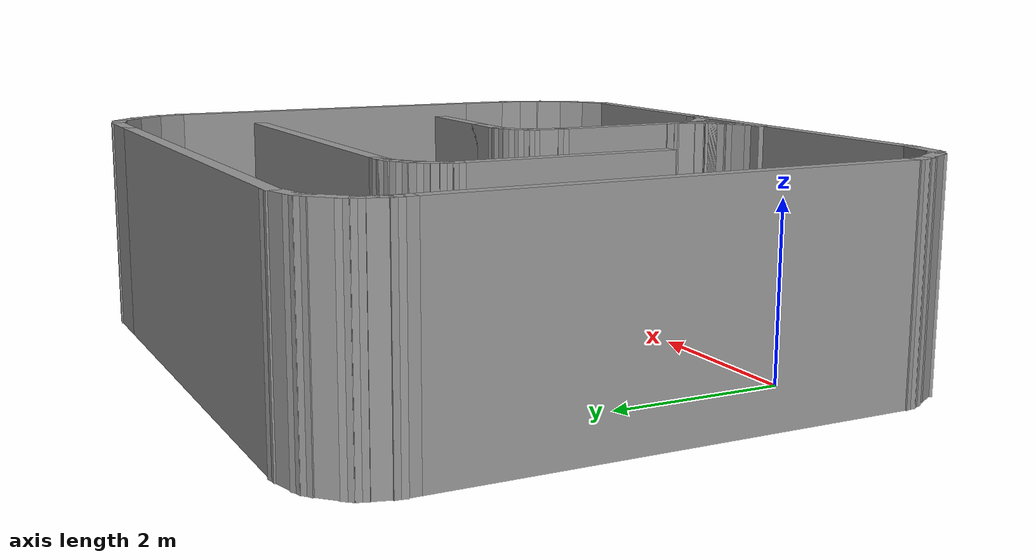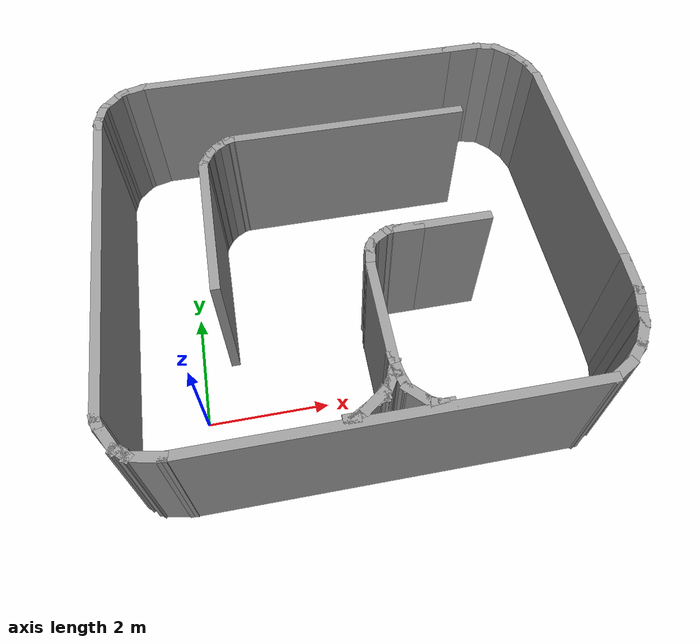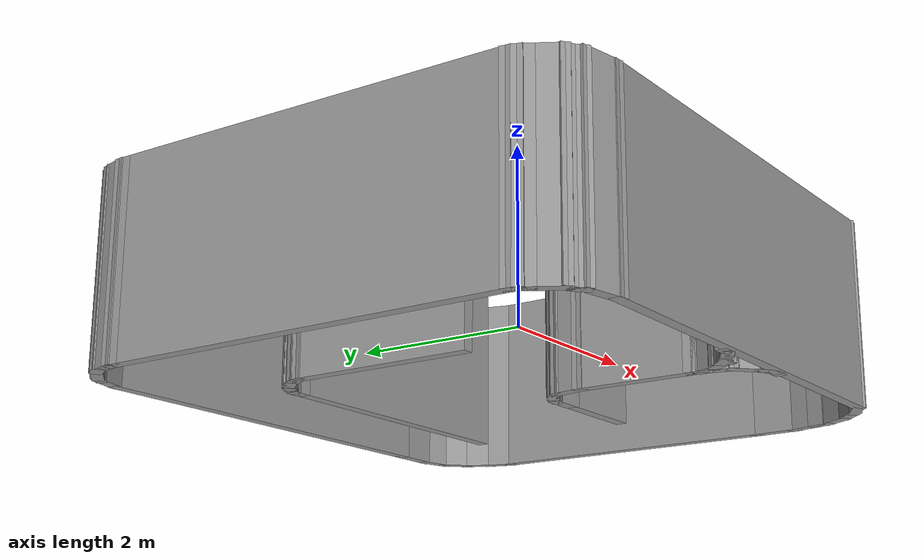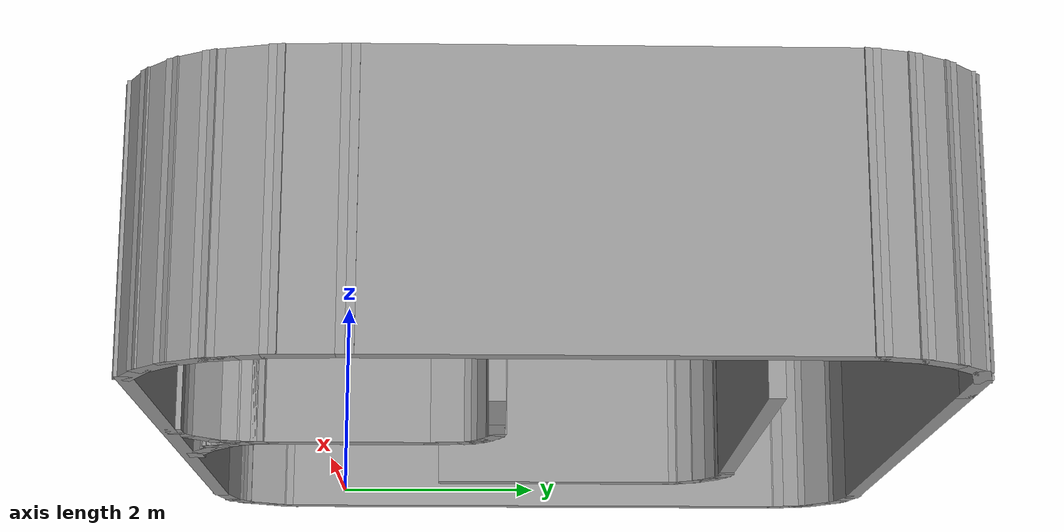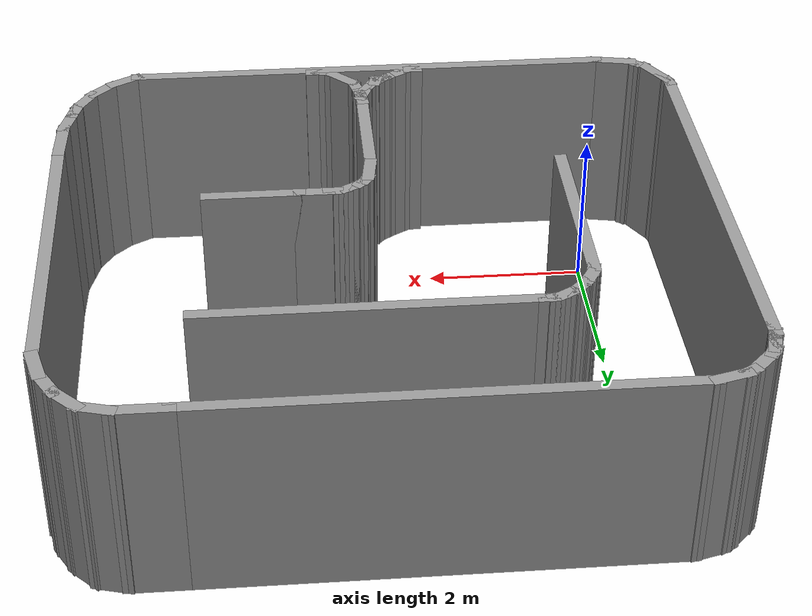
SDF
<?xml version='1.0'?>
<sdf version='1.7'>
  <model name='Untitled'>
    <pose>2.74892 2.07953 0 0 -0 0</pose>
    <link name='Wall_1'>
      <collision name='Wall_1_Collision'>
        <geometry>
          <box>
            <size>6.25 0.15 2.5</size>
          </box>
        </geometry>
        <pose>0 0 1.25 0 -0 0</pose>
      </collision>
      <visual name='Wall_1_Visual'>
        <pose>0 0 1.25 0 -0 0</pose>
        <geometry>
          <box>
            <size>6.25 0.15 2.5</size>
          </box>
        </geometry>
        <material>
          <script>
            <uri>file://media/materials/scripts/gazebo.material</uri>
            <name>Gazebo/Grey</name>
          </script>
          <ambient>1 1 1 1</ambient>
        </material>
        <meta>
          <layer>0</layer>
        </meta>
      </visual>
      <pose>-0.018918 -3.44953 0 0 -0 0</pose>
    </link>
    <link name='Wall_100'>
      <collision name='Wall_100_Collision'>
        <geometry>
          <box>
            <size>0.25 0.15 2.5</size>
          </box>
        </geometry>
        <pose>0 0 1.25 0 -0 0</pose>
      </collision>
      <visual name='Wall_100_Visual'>
        <pose>0 0 1.25 0 -0 0</pose>
        <geometry>
          <box>
            <size>0.25 0.15 2.5</size>
          </box>
        </geometry>
        <material>
          <script>
            <uri>file://media/materials/scripts/gazebo.material</uri>
            <name>Gazebo/Grey</name>
          </script>
          <ambient>1 1 1 1</ambient>
        </material>
        <meta>
          <layer>0</layer>
        </meta>
      </visual>
      <pose>-1.7187 1.88348 0 0 -0 0.261799</pose>
    </link>
    <link name='Wall_101'>
      <collision name='Wall_101_Collision'>
        <geometry>
          <box>
            <size>0.25 0.15 2.5</size>
          </box>
        </geometry>
        <pose>0 0 1.25 0 -0 0</pose>
      </collision>
      <visual name='Wall_101_Visual'>
        <pose>0 0 1.25 0 -0 0</pose>
        <geometry>
          <box>
            <size>0.25 0.15 2.5</size>
          </box>
        </geometry>
        <material>
          <script>
            <uri>file://media/materials/scripts/gazebo.material</uri>
            <name>Gazebo/Grey</name>
          </script>
          <ambient>1 1 1 1</ambient>
        </material>
        <meta>
          <layer>0</layer>
        </meta>
      </visual>
      <pose>-1.6204 1.89642 0 0 -0 0</pose>
    </link>
    <link name='Wall_102'>
      <collision name='Wall_102_Collision'>
        <geometry>
          <box>
            <size>4 0.15 2.5</size>
          </box>
        </geometry>
        <pose>0 0 1.25 0 -0 0</pose>
      </collision>
      <visual name='Wall_102_Visual'>
        <pose>0 0 1.25 0 -0 0</pose>
        <geometry>
          <box>
            <size>4 0.15 2.5</size>
          </box>
        </geometry>
        <material>
          <script>
            <uri>file://media/materials/scripts/gazebo.material</uri>
            <name>Gazebo/Grey</name>
          </script>
          <ambient>1 1 1 1</ambient>
        </material>
        <meta>
          <layer>0</layer>
        </meta>
      </visual>
      <pose>0.354598 1.89642 0 0 -0 0</pose>
    </link>
    <link name='Wall_14'>
      <collision name='Wall_14_Collision'>
        <geometry>
          <box>
            <size>0.5 0.15 2.5</size>
          </box>
        </geometry>
        <pose>0 0 1.25 0 -0 0</pose>
      </collision>
      <visual name='Wall_14_Visual'>
        <pose>0 0 1.25 0 -0 0</pose>
        <geometry>
          <box>
            <size>0.5 0.15 2.5</size>
          </box>
        </geometry>
        <material>
          <script>
            <uri>file://media/materials/scripts/gazebo.material</uri>
            <name>Gazebo/Grey</name>
          </script>
          <ambient>1 1 1 1</ambient>
        </material>
        <meta>
          <layer>0</layer>
        </meta>
      </visual>
      <pose>3.88018 2.64991 0 0 -0 1.8326</pose>
    </link>
    <link name='Wall_15'>
      <collision name='Wall_15_Collision'>
        <geometry>
          <box>
            <size>0.5 0.15 2.5</size>
          </box>
        </geometry>
        <pose>0 0 1.25 0 -0 0</pose>
      </collision>
      <visual name='Wall_15_Visual'>
        <pose>0 0 1.25 0 -0 0</pose>
        <geometry>
          <box>
            <size>0.5 0.15 2.5</size>
          </box>
        </geometry>
        <material>
          <script>
            <uri>file://media/materials/scripts/gazebo.material</uri>
            <name>Gazebo/Grey</name>
          </script>
          <ambient>1 1 1 1</ambient>
        </material>
        <meta>
          <layer>0</layer>
        </meta>
      </visual>
      <pose>3.74739 2.9705 0 0 -0 2.0944</pose>
    </link>
    <link name='Wall_16'>
      <collision name='Wall_16_Collision'>
        <geometry>
          <box>
            <size>0.5 0.15 2.5</size>
          </box>
        </geometry>
        <pose>0 0 1.25 0 -0 0</pose>
      </collision>
      <visual name='Wall_16_Visual'>
        <pose>0 0 1.25 0 -0 0</pose>
        <geometry>
          <box>
            <size>0.5 0.15 2.5</size>
          </box>
        </geometry>
        <material>
          <script>
            <uri>file://media/materials/scripts/gazebo.material</uri>
            <name>Gazebo/Grey</name>
          </script>
          <ambient>1 1 1 1</ambient>
        </material>
        <meta>
          <layer>0</layer>
        </meta>
      </visual>
      <pose>3.53615 3.2458 0 0 -0 2.35619</pose>
    </link>
    <link name='Wall_17'>
      <collision name='Wall_17_Collision'>
        <geometry>
          <box>
            <size>0.5 0.15 2.5</size>
          </box>
        </geometry>
        <pose>0 0 1.25 0 -0 0</pose>
      </collision>
      <visual name='Wall_17_Visual'>
        <pose>0 0 1.25 0 -0 0</pose>
        <geometry>
          <box>
            <size>0.5 0.15 2.5</size>
          </box>
        </geometry>
        <material>
          <script>
            <uri>file://media/materials/scripts/gazebo.material</uri>
            <name>Gazebo/Grey</name>
          </script>
          <ambient>1 1 1 1</ambient>
        </material>
        <meta>
          <layer>0</layer>
        </meta>
      </visual>
      <pose>3.24337 3.41484 0 0 -0 2.87979</pose>
    </link>
    <link name='Wall_18'>
      <collision name='Wall_18_Collision'>
        <geometry>
          <box>
            <size>0.75 0.15 2.5</size>
          </box>
        </geometry>
        <pose>0 0 1.25 0 -0 0</pose>
      </collision>
      <visual name='Wall_18_Visual'>
        <pose>0 0 1.25 0 -0 0</pose>
        <geometry>
          <box>
            <size>0.75 0.15 2.5</size>
          </box>
        </geometry>
        <material>
          <script>
            <uri>file://media/materials/scripts/gazebo.material</uri>
            <name>Gazebo/Grey</name>
          </script>
          <ambient>1 1 1 1</ambient>
        </material>
        <meta>
          <layer>0</layer>
        </meta>
      </visual>
      <pose>2.77433 3.46013 0 0 -0 3.14159</pose>
    </link>
    <link name='Wall_19'>
      <collision name='Wall_19_Collision'>
        <geometry>
          <box>
            <size>5.75 0.15 2.5</size>
          </box>
        </geometry>
        <pose>0 0 1.25 0 -0 0</pose>
      </collision>
      <visual name='Wall_19_Visual'>
        <pose>0 0 1.25 0 -0 0</pose>
        <geometry>
          <box>
            <size>5.75 0.15 2.5</size>
          </box>
        </geometry>
        <material>
          <script>
            <uri>file://media/materials/scripts/gazebo.material</uri>
            <name>Gazebo/Grey</name>
          </script>
          <ambient>1 1 1 1</ambient>
        </material>
        <meta>
          <layer>0</layer>
        </meta>
      </visual>
      <pose>-0.325669 3.46013 0 0 -0 3.14159</pose>
    </link>
    <link name='Wall_2'>
      <collision name='Wall_2_Collision'>
        <geometry>
          <box>
            <size>0.5 0.15 2.5</size>
          </box>
        </geometry>
        <pose>0 0 1.25 0 -0 0</pose>
      </collision>
      <visual name='Wall_2_Visual'>
        <pose>0 0 1.25 0 -0 0</pose>
        <geometry>
          <box>
            <size>0.5 0.15 2.5</size>
          </box>
        </geometry>
        <material>
          <script>
            <uri>file://media/materials/scripts/gazebo.material</uri>
            <name>Gazebo/Grey</name>
          </script>
          <ambient>1 1 1 1</ambient>
        </material>
        <meta>
          <layer>0</layer>
        </meta>
      </visual>
      <pose>3.18264 -3.36203 0 0 -0 0.523599</pose>
    </link>
    <link name='Wall_20'>
      <collision name='Wall_20_Collision'>
        <geometry>
          <box>
            <size>0.5 0.15 2.5</size>
          </box>
        </geometry>
        <pose>0 0 1.25 0 -0 0</pose>
      </collision>
      <visual name='Wall_20_Visual'>
        <pose>0 0 1.25 0 -0 0</pose>
        <geometry>
          <box>
            <size>0.5 0.15 2.5</size>
          </box>
        </geometry>
        <material>
          <script>
            <uri>file://media/materials/scripts/gazebo.material</uri>
            <name>Gazebo/Grey</name>
          </script>
          <ambient>1 1 1 1</ambient>
        </material>
        <meta>
          <layer>0</layer>
        </meta>
      </visual>
      <pose>-3.29471 3.41484 0 0 -0 -2.87979</pose>
    </link>
    <link name='Wall_21'>
      <collision name='Wall_21_Collision'>
        <geometry>
          <box>
            <size>0.25 0.15 2.5</size>
          </box>
        </geometry>
        <pose>0 0 1.25 0 -0 0</pose>
      </collision>
      <visual name='Wall_21_Visual'>
        <pose>0 0 1.25 0 -0 0</pose>
        <geometry>
          <box>
            <size>0.25 0.15 2.5</size>
          </box>
        </geometry>
        <material>
          <script>
            <uri>file://media/materials/scripts/gazebo.material</uri>
            <name>Gazebo/Grey</name>
          </script>
          <ambient>1 1 1 1</ambient>
        </material>
        <meta>
          <layer>0</layer>
        </meta>
      </visual>
      <pose>-3.50705 3.34454 0 0 -0 -2.61799</pose>
    </link>
    <link name='Wall_22'>
      <collision name='Wall_22_Collision'>
        <geometry>
          <box>
            <size>0.5 0.15 2.5</size>
          </box>
        </geometry>
        <pose>0 0 1.25 0 -0 0</pose>
      </collision>
      <visual name='Wall_22_Visual'>
        <pose>0 0 1.25 0 -0 0</pose>
        <geometry>
          <box>
            <size>0.5 0.15 2.5</size>
          </box>
        </geometry>
        <material>
          <script>
            <uri>file://media/materials/scripts/gazebo.material</uri>
            <name>Gazebo/Grey</name>
          </script>
          <ambient>1 1 1 1</ambient>
        </material>
        <meta>
          <layer>0</layer>
        </meta>
      </visual>
      <pose>-3.67409 3.1958 0 0 -0 -2.35619</pose>
    </link>
    <link name='Wall_23'>
      <collision name='Wall_23_Collision'>
        <geometry>
          <box>
            <size>0.25 0.15 2.5</size>
          </box>
        </geometry>
        <pose>0 0 1.25 0 -0 0</pose>
      </collision>
      <visual name='Wall_23_Visual'>
        <pose>0 0 1.25 0 -0 0</pose>
        <geometry>
          <box>
            <size>0.25 0.15 2.5</size>
          </box>
        </geometry>
        <material>
          <script>
            <uri>file://media/materials/scripts/gazebo.material</uri>
            <name>Gazebo/Grey</name>
          </script>
          <ambient>1 1 1 1</ambient>
        </material>
        <meta>
          <layer>0</layer>
        </meta>
      </visual>
      <pose>-3.82283 3.02875 0 0 -0 -2.0944</pose>
    </link>
    <link name='Wall_24'>
      <collision name='Wall_24_Collision'>
        <geometry>
          <box>
            <size>0.25 0.15 2.5</size>
          </box>
        </geometry>
        <pose>0 0 1.25 0 -0 0</pose>
      </collision>
      <visual name='Wall_24_Visual'>
        <pose>0 0 1.25 0 -0 0</pose>
        <geometry>
          <box>
            <size>0.25 0.15 2.5</size>
          </box>
        </geometry>
        <material>
          <script>
            <uri>file://media/materials/scripts/gazebo.material</uri>
            <name>Gazebo/Grey</name>
          </script>
          <ambient>1 1 1 1</ambient>
        </material>
        <meta>
          <layer>0</layer>
        </meta>
      </visual>
      <pose>-3.86077 2.93716 0 0 -0 -1.8326</pose>
    </link>
    <link name='Wall_25'>
      <collision name='Wall_25_Collision'>
        <geometry>
          <box>
            <size>0.25 0.15 2.5</size>
          </box>
        </geometry>
        <pose>0 0 1.25 0 -0 0</pose>
      </collision>
      <visual name='Wall_25_Visual'>
        <pose>0 0 1.25 0 -0 0</pose>
        <geometry>
          <box>
            <size>0.25 0.15 2.5</size>
          </box>
        </geometry>
        <material>
          <script>
            <uri>file://media/materials/scripts/gazebo.material</uri>
            <name>Gazebo/Grey</name>
          </script>
          <ambient>1 1 1 1</ambient>
        </material>
        <meta>
          <layer>0</layer>
        </meta>
      </visual>
      <pose>-3.88666 2.84056 0 0 -0 -1.8326</pose>
    </link>
    <link name='Wall_26'>
      <collision name='Wall_26_Collision'>
        <geometry>
          <box>
            <size>0.25 0.15 2.5</size>
          </box>
        </geometry>
        <pose>0 0 1.25 0 -0 0</pose>
      </collision>
      <visual name='Wall_26_Visual'>
        <pose>0 0 1.25 0 -0 0</pose>
        <geometry>
          <box>
            <size>0.25 0.15 2.5</size>
          </box>
        </geometry>
        <material>
          <script>
            <uri>file://media/materials/scripts/gazebo.material</uri>
            <name>Gazebo/Grey</name>
          </script>
          <ambient>1 1 1 1</ambient>
        </material>
        <meta>
          <layer>0</layer>
        </meta>
      </visual>
      <pose>-3.91254 2.74397 0 0 -0 -1.8326</pose>
    </link>
    <link name='Wall_27'>
      <collision name='Wall_27_Collision'>
        <geometry>
          <box>
            <size>0.25 0.15 2.5</size>
          </box>
        </geometry>
        <pose>0 0 1.25 0 -0 0</pose>
      </collision>
      <visual name='Wall_27_Visual'>
        <pose>0 0 1.25 0 -0 0</pose>
        <geometry>
          <box>
            <size>0.25 0.15 2.5</size>
          </box>
        </geometry>
        <material>
          <script>
            <uri>file://media/materials/scripts/gazebo.material</uri>
            <name>Gazebo/Grey</name>
          </script>
          <ambient>1 1 1 1</ambient>
        </material>
        <meta>
          <layer>0</layer>
        </meta>
      </visual>
      <pose>-3.92548 2.64568 0 0 -0 -1.5708</pose>
    </link>
    <link name='Wall_28'>
      <collision name='Wall_28_Collision'>
        <geometry>
          <box>
            <size>5.5 0.15 2.5</size>
          </box>
        </geometry>
        <pose>0 0 1.25 0 -0 0</pose>
      </collision>
      <visual name='Wall_28_Visual'>
        <pose>0 0 1.25 0 -0 0</pose>
        <geometry>
          <box>
            <size>5.5 0.15 2.5</size>
          </box>
        </geometry>
        <material>
          <script>
            <uri>file://media/materials/scripts/gazebo.material</uri>
            <name>Gazebo/Grey</name>
          </script>
          <ambient>1 1 1 1</ambient>
        </material>
        <meta>
          <layer>0</layer>
        </meta>
      </visual>
      <pose>-3.92548 -0.079325 0 0 -0 -1.5708</pose>
    </link>
    <link name='Wall_29'>
      <collision name='Wall_29_Collision'>
        <geometry>
          <box>
            <size>0.25 0.15 2.5</size>
          </box>
        </geometry>
        <pose>0 0 1.25 0 -0 0</pose>
      </collision>
      <visual name='Wall_29_Visual'>
        <pose>0 0 1.25 0 -0 0</pose>
        <geometry>
          <box>
            <size>0.25 0.15 2.5</size>
          </box>
        </geometry>
        <material>
          <script>
            <uri>file://media/materials/scripts/gazebo.material</uri>
            <name>Gazebo/Grey</name>
          </script>
          <ambient>1 1 1 1</ambient>
        </material>
        <meta>
          <layer>0</layer>
        </meta>
      </visual>
      <pose>-3.91254 -2.80262 0 0 -0 -1.309</pose>
    </link>
    <link name='Wall_3'>
      <collision name='Wall_3_Collision'>
        <geometry>
          <box>
            <size>0.5 0.15 2.5</size>
          </box>
        </geometry>
        <pose>0 0 1.25 0 -0 0</pose>
      </collision>
      <visual name='Wall_3_Visual'>
        <pose>0 0 1.25 0 -0 0</pose>
        <geometry>
          <box>
            <size>0.5 0.15 2.5</size>
          </box>
        </geometry>
        <material>
          <script>
            <uri>file://media/materials/scripts/gazebo.material</uri>
            <name>Gazebo/Grey</name>
          </script>
          <ambient>1 1 1 1</ambient>
        </material>
        <meta>
          <layer>0</layer>
        </meta>
      </visual>
      <pose>3.45793 -3.15079 0 0 -0 0.785398</pose>
    </link>
    <link name='Wall_30'>
      <collision name='Wall_30_Collision'>
        <geometry>
          <box>
            <size>0.25 0.15 2.5</size>
          </box>
        </geometry>
        <pose>0 0 1.25 0 -0 0</pose>
      </collision>
      <visual name='Wall_30_Visual'>
        <pose>0 0 1.25 0 -0 0</pose>
        <geometry>
          <box>
            <size>0.25 0.15 2.5</size>
          </box>
        </geometry>
        <material>
          <script>
            <uri>file://media/materials/scripts/gazebo.material</uri>
            <name>Gazebo/Grey</name>
          </script>
          <ambient>1 1 1 1</ambient>
        </material>
        <meta>
          <layer>0</layer>
        </meta>
      </visual>
      <pose>-3.8746 -2.89422 0 0 -0 -1.0472</pose>
    </link>
    <link name='Wall_31'>
      <collision name='Wall_31_Collision'>
        <geometry>
          <box>
            <size>0.5 0.15 2.5</size>
          </box>
        </geometry>
        <pose>0 0 1.25 0 -0 0</pose>
      </collision>
      <visual name='Wall_31_Visual'>
        <pose>0 0 1.25 0 -0 0</pose>
        <geometry>
          <box>
            <size>0.5 0.15 2.5</size>
          </box>
        </geometry>
        <material>
          <script>
            <uri>file://media/materials/scripts/gazebo.material</uri>
            <name>Gazebo/Grey</name>
          </script>
          <ambient>1 1 1 1</ambient>
        </material>
        <meta>
          <layer>0</layer>
        </meta>
      </visual>
      <pose>-3.7621 -3.08907 0 0 -0 -1.0472</pose>
    </link>
    <link name='Wall_32'>
      <collision name='Wall_32_Collision'>
        <geometry>
          <box>
            <size>0.25 0.15 2.5</size>
          </box>
        </geometry>
        <pose>0 0 1.25 0 -0 0</pose>
      </collision>
      <visual name='Wall_32_Visual'>
        <pose>0 0 1.25 0 -0 0</pose>
        <geometry>
          <box>
            <size>0.25 0.15 2.5</size>
          </box>
        </geometry>
        <material>
          <script>
            <uri>file://media/materials/scripts/gazebo.material</uri>
            <name>Gazebo/Grey</name>
          </script>
          <ambient>1 1 1 1</ambient>
        </material>
        <meta>
          <layer>0</layer>
        </meta>
      </visual>
      <pose>-3.6313 -3.26563 0 0 -0 -0.523599</pose>
    </link>
    <link name='Wall_33'>
      <collision name='Wall_33_Collision'>
        <geometry>
          <box>
            <size>0.25 0.15 2.5</size>
          </box>
        </geometry>
        <pose>0 0 1.25 0 -0 0</pose>
      </collision>
      <visual name='Wall_33_Visual'>
        <pose>0 0 1.25 0 -0 0</pose>
        <geometry>
          <box>
            <size>0.25 0.15 2.5</size>
          </box>
        </geometry>
        <material>
          <script>
            <uri>file://media/materials/scripts/gazebo.material</uri>
            <name>Gazebo/Grey</name>
          </script>
          <ambient>1 1 1 1</ambient>
        </material>
        <meta>
          <layer>0</layer>
        </meta>
      </visual>
      <pose>-3.55264 -3.32598 0 0 -0 -0.785398</pose>
    </link>
    <link name='Wall_34'>
      <collision name='Wall_34_Collision'>
        <geometry>
          <box>
            <size>0.606957 0.15 2.5</size>
          </box>
        </geometry>
        <pose>0 0 1.25 0 -0 0</pose>
      </collision>
      <visual name='Wall_34_Visual'>
        <pose>0 0 1.25 0 -0 0</pose>
        <geometry>
          <box>
            <size>0.606957 0.15 2.5</size>
          </box>
        </geometry>
        <material>
          <script>
            <uri>file://media/materials/scripts/gazebo.material</uri>
            <name>Gazebo/Grey</name>
          </script>
          <ambient>1 1 1 1</ambient>
        </material>
        <meta>
          <layer>0</layer>
        </meta>
      </visual>
      <pose>-3.2931 -3.40544 0 0 -0 -0.19422</pose>
    </link>
    <link name='Wall_37'>
      <collision name='Wall_37_Collision'>
        <geometry>
          <box>
            <size>0.25 0.15 2.5</size>
          </box>
        </geometry>
        <pose>0 0 1.25 0 -0 0</pose>
      </collision>
      <visual name='Wall_37_Visual'>
        <pose>0 0 1.25 0 -0 0</pose>
        <geometry>
          <box>
            <size>0.25 0.15 2.5</size>
          </box>
        </geometry>
        <material>
          <script>
            <uri>file://media/materials/scripts/gazebo.material</uri>
            <name>Gazebo/Grey</name>
          </script>
          <ambient>1 1 1 1</ambient>
        </material>
        <meta>
          <layer>0</layer>
        </meta>
      </visual>
      <pose>0.687325 -3.39845 0 0 -0 3.14159</pose>
    </link>
    <link name='Wall_38'>
      <collision name='Wall_38_Collision'>
        <geometry>
          <box>
            <size>0.25 0.15 2.5</size>
          </box>
        </geometry>
        <pose>0 0 1.25 0 -0 0</pose>
      </collision>
      <visual name='Wall_38_Visual'>
        <pose>0 0 1.25 0 -0 0</pose>
        <geometry>
          <box>
            <size>0.25 0.15 2.5</size>
          </box>
        </geometry>
        <material>
          <script>
            <uri>file://media/materials/scripts/gazebo.material</uri>
            <name>Gazebo/Grey</name>
          </script>
          <ambient>1 1 1 1</ambient>
        </material>
        <meta>
          <layer>0</layer>
        </meta>
      </visual>
      <pose>0.589029 -3.38551 0 0 -0 2.87979</pose>
    </link>
    <link name='Wall_39'>
      <collision name='Wall_39_Collision'>
        <geometry>
          <box>
            <size>0.25 0.15 2.5</size>
          </box>
        </geometry>
        <pose>0 0 1.25 0 -0 0</pose>
      </collision>
      <visual name='Wall_39_Visual'>
        <pose>0 0 1.25 0 -0 0</pose>
        <geometry>
          <box>
            <size>0.25 0.15 2.5</size>
          </box>
        </geometry>
        <material>
          <script>
            <uri>file://media/materials/scripts/gazebo.material</uri>
            <name>Gazebo/Grey</name>
          </script>
          <ambient>1 1 1 1</ambient>
        </material>
        <meta>
          <layer>0</layer>
        </meta>
      </visual>
      <pose>0.497431 -3.34757 0 0 -0 2.61799</pose>
    </link>
    <link name='Wall_4'>
      <collision name='Wall_4_Collision'>
        <geometry>
          <box>
            <size>0.5 0.15 2.5</size>
          </box>
        </geometry>
        <pose>0 0 1.25 0 -0 0</pose>
      </collision>
      <visual name='Wall_4_Visual'>
        <pose>0 0 1.25 0 -0 0</pose>
        <geometry>
          <box>
            <size>0.5 0.15 2.5</size>
          </box>
        </geometry>
        <material>
          <script>
            <uri>file://media/materials/scripts/gazebo.material</uri>
            <name>Gazebo/Grey</name>
          </script>
          <ambient>1 1 1 1</ambient>
        </material>
        <meta>
          <layer>0</layer>
        </meta>
      </visual>
      <pose>3.66918 -2.87549 0 0 -0 1.0472</pose>
    </link>
    <link name='Wall_40'>
      <collision name='Wall_40_Collision'>
        <geometry>
          <box>
            <size>0.5 0.15 2.5</size>
          </box>
        </geometry>
        <pose>0 0 1.25 0 -0 0</pose>
      </collision>
      <visual name='Wall_40_Visual'>
        <pose>0 0 1.25 0 -0 0</pose>
        <geometry>
          <box>
            <size>0.5 0.15 2.5</size>
          </box>
        </geometry>
        <material>
          <script>
            <uri>file://media/materials/scripts/gazebo.material</uri>
            <name>Gazebo/Grey</name>
          </script>
          <ambient>1 1 1 1</ambient>
        </material>
        <meta>
          <layer>0</layer>
        </meta>
      </visual>
      <pose>0.330386 -3.19882 0 0 -0 2.35619</pose>
    </link>
    <link name='Wall_41'>
      <collision name='Wall_41_Collision'>
        <geometry>
          <box>
            <size>0.25 0.15 2.5</size>
          </box>
        </geometry>
        <pose>0 0 1.25 0 -0 0</pose>
      </collision>
      <visual name='Wall_41_Visual'>
        <pose>0 0 1.25 0 -0 0</pose>
        <geometry>
          <box>
            <size>0.25 0.15 2.5</size>
          </box>
        </geometry>
        <material>
          <script>
            <uri>file://media/materials/scripts/gazebo.material</uri>
            <name>Gazebo/Grey</name>
          </script>
          <ambient>1 1 1 1</ambient>
        </material>
        <meta>
          <layer>0</layer>
        </meta>
      </visual>
      <pose>0.193702 -3.02678 0 0 -0 1.8326</pose>
    </link>
    <link name='Wall_42'>
      <collision name='Wall_42_Collision'>
        <geometry>
          <box>
            <size>0.25 0.15 2.5</size>
          </box>
        </geometry>
        <pose>0 0 1.25 0 -0 0</pose>
      </collision>
      <visual name='Wall_42_Visual'>
        <pose>0 0 1.25 0 -0 0</pose>
        <geometry>
          <box>
            <size>0.25 0.15 2.5</size>
          </box>
        </geometry>
        <material>
          <script>
            <uri>file://media/materials/scripts/gazebo.material</uri>
            <name>Gazebo/Grey</name>
          </script>
          <ambient>1 1 1 1</ambient>
        </material>
        <meta>
          <layer>0</layer>
        </meta>
      </visual>
      <pose>0.16782 -2.93019 0 0 -0 1.8326</pose>
    </link>
    <link name='Wall_43'>
      <collision name='Wall_43_Collision'>
        <geometry>
          <box>
            <size>0.256722 0.15 2.5</size>
          </box>
        </geometry>
        <pose>0 0 1.25 0 -0 0</pose>
      </collision>
      <visual name='Wall_43_Visual'>
        <pose>0 0 1.25 0 -0 0</pose>
        <geometry>
          <box>
            <size>0.256722 0.15 2.5</size>
          </box>
        </geometry>
        <material>
          <script>
            <uri>file://media/materials/scripts/gazebo.material</uri>
            <name>Gazebo/Grey</name>
          </script>
          <ambient>1 1 1 1</ambient>
        </material>
        <meta>
          <layer>0</layer>
        </meta>
      </visual>
      <pose>0.14631 -2.82923 0 0 -0 1.73207</pose>
    </link>
    <link name='Wall_44'>
      <collision name='Wall_44_Collision'>
        <geometry>
          <box>
            <size>0.245026 0.15 2.5</size>
          </box>
        </geometry>
        <pose>0 0 1.25 0 -0 0</pose>
      </collision>
      <visual name='Wall_44_Visual'>
        <pose>0 0 1.25 0 -0 0</pose>
        <geometry>
          <box>
            <size>0.245026 0.15 2.5</size>
          </box>
        </geometry>
        <material>
          <script>
            <uri>file://media/materials/scripts/gazebo.material</uri>
            <name>Gazebo/Grey</name>
          </script>
          <ambient>1 1 1 1</ambient>
        </material>
        <meta>
          <layer>0</layer>
        </meta>
      </visual>
      <pose>0.130853 -2.72955 0 0 -0 1.7163</pose>
    </link>
    <link name='Wall_45'>
      <collision name='Wall_45_Collision'>
        <geometry>
          <box>
            <size>1.75 0.15 2.5</size>
          </box>
        </geometry>
        <pose>0 0 1.25 0 -0 0</pose>
      </collision>
      <visual name='Wall_45_Visual'>
        <pose>0 0 1.25 0 -0 0</pose>
        <geometry>
          <box>
            <size>1.75 0.15 2.5</size>
          </box>
        </geometry>
        <material>
          <script>
            <uri>file://media/materials/scripts/gazebo.material</uri>
            <name>Gazebo/Grey</name>
          </script>
          <ambient>1 1 1 1</ambient>
        </material>
        <meta>
          <layer>0</layer>
        </meta>
      </visual>
      <pose>0.121464 -1.87753 0 0 -0 1.5708</pose>
    </link>
    <link name='Wall_47'>
      <collision name='Wall_47_Collision'>
        <geometry>
          <box>
            <size>0.245026 0.15 2.5</size>
          </box>
        </geometry>
        <pose>0 0 1.25 0 -0 0</pose>
      </collision>
      <visual name='Wall_47_Visual'>
        <pose>0 0 1.25 0 -0 0</pose>
        <geometry>
          <box>
            <size>0.245026 0.15 2.5</size>
          </box>
        </geometry>
        <material>
          <script>
            <uri>file://media/materials/scripts/gazebo.material</uri>
            <name>Gazebo/Grey</name>
          </script>
          <ambient>1 1 1 1</ambient>
        </material>
        <meta>
          <layer>0</layer>
        </meta>
      </visual>
      <pose>0.130853 -2.72955 0 0 -0 -1.42529</pose>
    </link>
    <link name='Wall_5'>
      <collision name='Wall_5_Collision'>
        <geometry>
          <box>
            <size>0.25 0.15 2.5</size>
          </box>
        </geometry>
        <pose>0 0 1.25 0 -0 0</pose>
      </collision>
      <visual name='Wall_5_Visual'>
        <pose>0 0 1.25 0 -0 0</pose>
        <geometry>
          <box>
            <size>0.25 0.15 2.5</size>
          </box>
        </geometry>
        <material>
          <script>
            <uri>file://media/materials/scripts/gazebo.material</uri>
            <name>Gazebo/Grey</name>
          </script>
          <ambient>1 1 1 1</ambient>
        </material>
        <meta>
          <layer>0</layer>
        </meta>
      </visual>
      <pose>3.76962 -2.67564 0 0 -0 1.309</pose>
    </link>
    <link name='Wall_59'>
      <collision name='Wall_59_Collision'>
        <geometry>
          <box>
            <size>0.25 0.15 2.5</size>
          </box>
        </geometry>
        <pose>0 0 1.25 0 -0 0</pose>
      </collision>
      <visual name='Wall_59_Visual'>
        <pose>0 0 1.25 0 -0 0</pose>
        <geometry>
          <box>
            <size>0.25 0.15 2.5</size>
          </box>
        </geometry>
        <material>
          <script>
            <uri>file://media/materials/scripts/gazebo.material</uri>
            <name>Gazebo/Grey</name>
          </script>
          <ambient>1 1 1 1</ambient>
        </material>
        <meta>
          <layer>0</layer>
        </meta>
      </visual>
      <pose>-0.600821 -3.38053 0 0 -0 0</pose>
    </link>
    <link name='Wall_6'>
      <collision name='Wall_6_Collision'>
        <geometry>
          <box>
            <size>0.25 0.15 2.5</size>
          </box>
        </geometry>
        <pose>0 0 1.25 0 -0 0</pose>
      </collision>
      <visual name='Wall_6_Visual'>
        <pose>0 0 1.25 0 -0 0</pose>
        <geometry>
          <box>
            <size>0.25 0.15 2.5</size>
          </box>
        </geometry>
        <material>
          <script>
            <uri>file://media/materials/scripts/gazebo.material</uri>
            <name>Gazebo/Grey</name>
          </script>
          <ambient>1 1 1 1</ambient>
        </material>
        <meta>
          <layer>0</layer>
        </meta>
      </visual>
      <pose>3.7955 -2.57905 0 0 -0 1.309</pose>
    </link>
    <link name='Wall_60'>
      <collision name='Wall_60_Collision'>
        <geometry>
          <box>
            <size>0.25 0.15 2.5</size>
          </box>
        </geometry>
        <pose>0 0 1.25 0 -0 0</pose>
      </collision>
      <visual name='Wall_60_Visual'>
        <pose>0 0 1.25 0 -0 0</pose>
        <geometry>
          <box>
            <size>0.25 0.15 2.5</size>
          </box>
        </geometry>
        <material>
          <script>
            <uri>file://media/materials/scripts/gazebo.material</uri>
            <name>Gazebo/Grey</name>
          </script>
          <ambient>1 1 1 1</ambient>
        </material>
        <meta>
          <layer>0</layer>
        </meta>
      </visual>
      <pose>-0.50752 -3.35553 0 0 -0 0.523599</pose>
    </link>
    <link name='Wall_61'>
      <collision name='Wall_61_Collision'>
        <geometry>
          <box>
            <size>0.238844 0.15 2.5</size>
          </box>
        </geometry>
        <pose>0 0 1.25 0 -0 0</pose>
      </collision>
      <visual name='Wall_61_Visual'>
        <pose>0 0 1.25 0 -0 0</pose>
        <geometry>
          <box>
            <size>0.238844 0.15 2.5</size>
          </box>
        </geometry>
        <material>
          <script>
            <uri>file://media/materials/scripts/gazebo.material</uri>
            <name>Gazebo/Grey</name>
          </script>
          <ambient>1 1 1 1</ambient>
        </material>
        <meta>
          <layer>0</layer>
        </meta>
      </visual>
      <pose>-0.425946 -3.30804 0 0 -0 0.531187</pose>
    </link>
    <link name='Wall_62'>
      <collision name='Wall_62_Collision'>
        <geometry>
          <box>
            <size>0.490296 0.15 2.5</size>
          </box>
        </geometry>
        <pose>0 0 1.25 0 -0 0</pose>
      </collision>
      <visual name='Wall_62_Visual'>
        <pose>0 0 1.25 0 -0 0</pose>
        <geometry>
          <box>
            <size>0.490296 0.15 2.5</size>
          </box>
        </geometry>
        <material>
          <script>
            <uri>file://media/materials/scripts/gazebo.material</uri>
            <name>Gazebo/Grey</name>
          </script>
          <ambient>1 1 1 1</ambient>
        </material>
        <meta>
          <layer>0</layer>
        </meta>
      </visual>
      <pose>-0.24596 -3.19429 0 0 -0 0.637933</pose>
    </link>
    <link name='Wall_63'>
      <collision name='Wall_63_Collision'>
        <geometry>
          <box>
            <size>0.289379 0.15 2.5</size>
          </box>
        </geometry>
        <pose>0 0 1.25 0 -0 0</pose>
      </collision>
      <visual name='Wall_63_Visual'>
        <pose>0 0 1.25 0 -0 0</pose>
        <geometry>
          <box>
            <size>0.289379 0.15 2.5</size>
          </box>
        </geometry>
        <material>
          <script>
            <uri>file://media/materials/scripts/gazebo.material</uri>
            <name>Gazebo/Grey</name>
          </script>
          <ambient>1 1 1 1</ambient>
        </material>
        <meta>
          <layer>0</layer>
        </meta>
      </visual>
      <pose>-0.162308 -3.13342 0 0 -0 -2.33068</pose>
    </link>
    <link name='Wall_64'>
      <collision name='Wall_64_Collision'>
        <geometry>
          <box>
            <size>0.289379 0.15 2.5</size>
          </box>
        </geometry>
        <pose>0 0 1.25 0 -0 0</pose>
      </collision>
      <visual name='Wall_64_Visual'>
        <pose>0 0 1.25 0 -0 0</pose>
        <geometry>
          <box>
            <size>0.289379 0.15 2.5</size>
          </box>
        </geometry>
        <material>
          <script>
            <uri>file://media/materials/scripts/gazebo.material</uri>
            <name>Gazebo/Grey</name>
          </script>
          <ambient>1 1 1 1</ambient>
        </material>
        <meta>
          <layer>0</layer>
        </meta>
      </visual>
      <pose>-0.162308 -3.13342 0 0 -0 0.810911</pose>
    </link>
    <link name='Wall_65'>
      <collision name='Wall_65_Collision'>
        <geometry>
          <box>
            <size>0.289379 0.15 2.5</size>
          </box>
        </geometry>
        <pose>0 0 1.25 0 -0 0</pose>
      </collision>
      <visual name='Wall_65_Visual'>
        <pose>0 0 1.25 0 -0 0</pose>
        <geometry>
          <box>
            <size>0.289379 0.15 2.5</size>
          </box>
        </geometry>
        <material>
          <script>
            <uri>file://media/materials/scripts/gazebo.material</uri>
            <name>Gazebo/Grey</name>
          </script>
          <ambient>1 1 1 1</ambient>
        </material>
        <meta>
          <layer>0</layer>
        </meta>
      </visual>
      <pose>-0.162308 -3.13342 0 0 -0 -2.33068</pose>
    </link>
    <link name='Wall_66'>
      <collision name='Wall_66_Collision'>
        <geometry>
          <box>
            <size>0.261124 0.15 2.5</size>
          </box>
        </geometry>
        <pose>0 0 1.25 0 -0 0</pose>
      </collision>
      <visual name='Wall_66_Visual'>
        <pose>0 0 1.25 0 -0 0</pose>
        <geometry>
          <box>
            <size>0.261124 0.15 2.5</size>
          </box>
        </geometry>
        <material>
          <script>
            <uri>file://media/materials/scripts/gazebo.material</uri>
            <name>Gazebo/Grey</name>
          </script>
          <ambient>1 1 1 1</ambient>
        </material>
        <meta>
          <layer>0</layer>
        </meta>
      </visual>
      <pose>-0.157047 -3.16813 0 0 -0 0.288472</pose>
    </link>
    <link name='Wall_67'>
      <collision name='Wall_67_Collision'>
        <geometry>
          <box>
            <size>0.25 0.15 2.5</size>
          </box>
        </geometry>
        <pose>0 0 1.25 0 -0 0</pose>
      </collision>
      <visual name='Wall_67_Visual'>
        <pose>0 0 1.25 0 -0 0</pose>
        <geometry>
          <box>
            <size>0.25 0.15 2.5</size>
          </box>
        </geometry>
        <material>
          <script>
            <uri>file://media/materials/scripts/gazebo.material</uri>
            <name>Gazebo/Grey</name>
          </script>
          <ambient>1 1 1 1</ambient>
        </material>
        <meta>
          <layer>0</layer>
        </meta>
      </visual>
      <pose>-0.085811 -3.10403 0 0 -0 1.309</pose>
    </link>
    <link name='Wall_7'>
      <collision name='Wall_7_Collision'>
        <geometry>
          <box>
            <size>0.5 0.15 2.5</size>
          </box>
        </geometry>
        <pose>0 0 1.25 0 -0 0</pose>
      </collision>
      <visual name='Wall_7_Visual'>
        <pose>0 0 1.25 0 -0 0</pose>
        <geometry>
          <box>
            <size>0.5 0.15 2.5</size>
          </box>
        </geometry>
        <material>
          <script>
            <uri>file://media/materials/scripts/gazebo.material</uri>
            <name>Gazebo/Grey</name>
          </script>
          <ambient>1 1 1 1</ambient>
        </material>
        <meta>
          <layer>0</layer>
        </meta>
      </visual>
      <pose>3.85374 -2.36171 0 0 -0 1.309</pose>
    </link>
    <link name='Wall_70'>
      <collision name='Wall_70_Collision'>
        <geometry>
          <box>
            <size>0.401391 0.15 2.5</size>
          </box>
        </geometry>
        <pose>0 0 1.25 0 -0 0</pose>
      </collision>
      <visual name='Wall_70_Visual'>
        <pose>0 0 1.25 0 -0 0</pose>
        <geometry>
          <box>
            <size>0.401391 0.15 2.5</size>
          </box>
        </geometry>
        <material>
          <script>
            <uri>file://media/materials/scripts/gazebo.material</uri>
            <name>Gazebo/Grey</name>
          </script>
          <ambient>1 1 1 1</ambient>
        </material>
        <meta>
          <layer>0</layer>
        </meta>
      </visual>
      <pose>-0.040556 -3.04369 0 0 -0 1.04373</pose>
    </link>
    <link name='Wall_71'>
      <collision name='Wall_71_Collision'>
        <geometry>
          <box>
            <size>0.260067 0.15 2.5</size>
          </box>
        </geometry>
        <pose>0 0 1.25 0 -0 0</pose>
      </collision>
      <visual name='Wall_71_Visual'>
        <pose>0 0 1.25 0 -0 0</pose>
        <geometry>
          <box>
            <size>0.260067 0.15 2.5</size>
          </box>
        </geometry>
        <material>
          <script>
            <uri>file://media/materials/scripts/gazebo.material</uri>
            <name>Gazebo/Grey</name>
          </script>
          <ambient>1 1 1 1</ambient>
        </material>
        <meta>
          <layer>0</layer>
        </meta>
      </visual>
      <pose>0.048181 -2.8943 0 0 -0 0.982508</pose>
    </link>
    <link name='Wall_72'>
      <collision name='Wall_72_Collision'>
        <geometry>
          <box>
            <size>0.324934 0.15 2.5</size>
          </box>
        </geometry>
        <pose>0 0 1.25 0 -0 0</pose>
      </collision>
      <visual name='Wall_72_Visual'>
        <pose>0 0 1.25 0 -0 0</pose>
        <geometry>
          <box>
            <size>0.324934 0.15 2.5</size>
          </box>
        </geometry>
        <material>
          <script>
            <uri>file://media/materials/scripts/gazebo.material</uri>
            <name>Gazebo/Grey</name>
          </script>
          <ambient>1 1 1 1</ambient>
        </material>
        <meta>
          <layer>0</layer>
        </meta>
      </visual>
      <pose>0.096691 -2.76753 0 0 -0 1.18326</pose>
    </link>
    <link name='Wall_73'>
      <collision name='Wall_73_Collision'>
        <geometry>
          <box>
            <size>0.256106 0.15 2.5</size>
          </box>
        </geometry>
        <pose>0 0 1.25 0 -0 0</pose>
      </collision>
      <visual name='Wall_73_Visual'>
        <pose>0 0 1.25 0 -0 0</pose>
        <geometry>
          <box>
            <size>0.256106 0.15 2.5</size>
          </box>
        </geometry>
        <material>
          <script>
            <uri>file://media/materials/scripts/gazebo.material</uri>
            <name>Gazebo/Grey</name>
          </script>
          <ambient>1 1 1 1</ambient>
        </material>
        <meta>
          <layer>0</layer>
        </meta>
      </visual>
      <pose>0.119688 -2.63404 0 0 -0 1.66626</pose>
    </link>
    <link name='Wall_75'>
      <collision name='Wall_75_Collision'>
        <geometry>
          <box>
            <size>0.490296 0.15 2.5</size>
          </box>
        </geometry>
        <pose>0 0 1.25 0 -0 0</pose>
      </collision>
      <visual name='Wall_75_Visual'>
        <pose>0 0 1.25 0 -0 0</pose>
        <geometry>
          <box>
            <size>0.490296 0.15 2.5</size>
          </box>
        </geometry>
        <material>
          <script>
            <uri>file://media/materials/scripts/gazebo.material</uri>
            <name>Gazebo/Grey</name>
          </script>
          <ambient>1 1 1 1</ambient>
        </material>
        <meta>
          <layer>0</layer>
        </meta>
      </visual>
      <pose>0.146464 -0.909234 0 0 -0 1.42333</pose>
    </link>
    <link name='Wall_76'>
      <collision name='Wall_76_Collision'>
        <geometry>
          <box>
            <size>0.25 0.15 2.5</size>
          </box>
        </geometry>
        <pose>0 0 1.25 0 -0 0</pose>
      </collision>
      <visual name='Wall_76_Visual'>
        <pose>0 0 1.25 0 -0 0</pose>
        <geometry>
          <box>
            <size>0.25 0.15 2.5</size>
          </box>
        </geometry>
        <material>
          <script>
            <uri>file://media/materials/scripts/gazebo.material</uri>
            <name>Gazebo/Grey</name>
          </script>
          <ambient>1 1 1 1</ambient>
        </material>
        <meta>
          <layer>0</layer>
        </meta>
      </visual>
      <pose>0.196464 -0.697631 0 0 -0 1.0472</pose>
    </link>
    <link name='Wall_77'>
      <collision name='Wall_77_Collision'>
        <geometry>
          <box>
            <size>0.25 0.15 2.5</size>
          </box>
        </geometry>
        <pose>0 0 1.25 0 -0 0</pose>
      </collision>
      <visual name='Wall_77_Visual'>
        <pose>0 0 1.25 0 -0 0</pose>
        <geometry>
          <box>
            <size>0.25 0.15 2.5</size>
          </box>
        </geometry>
        <material>
          <script>
            <uri>file://media/materials/scripts/gazebo.material</uri>
            <name>Gazebo/Grey</name>
          </script>
          <ambient>1 1 1 1</ambient>
        </material>
        <meta>
          <layer>0</layer>
        </meta>
      </visual>
      <pose>0.256819 -0.618975 0 0 -0 0.785398</pose>
    </link>
    <link name='Wall_78'>
      <collision name='Wall_78_Collision'>
        <geometry>
          <box>
            <size>0.25 0.15 2.5</size>
          </box>
        </geometry>
        <pose>0 0 1.25 0 -0 0</pose>
      </collision>
      <visual name='Wall_78_Visual'>
        <pose>0 0 1.25 0 -0 0</pose>
        <geometry>
          <box>
            <size>0.25 0.15 2.5</size>
          </box>
        </geometry>
        <material>
          <script>
            <uri>file://media/materials/scripts/gazebo.material</uri>
            <name>Gazebo/Grey</name>
          </script>
          <ambient>1 1 1 1</ambient>
        </material>
        <meta>
          <layer>0</layer>
        </meta>
      </visual>
      <pose>0.335476 -0.558619 0 0 -0 0.523599</pose>
    </link>
    <link name='Wall_79'>
      <collision name='Wall_79_Collision'>
        <geometry>
          <box>
            <size>0.25 0.15 2.5</size>
          </box>
        </geometry>
        <pose>0 0 1.25 0 -0 0</pose>
      </collision>
      <visual name='Wall_79_Visual'>
        <pose>0 0 1.25 0 -0 0</pose>
        <geometry>
          <box>
            <size>0.25 0.15 2.5</size>
          </box>
        </geometry>
        <material>
          <script>
            <uri>file://media/materials/scripts/gazebo.material</uri>
            <name>Gazebo/Grey</name>
          </script>
          <ambient>1 1 1 1</ambient>
        </material>
        <meta>
          <layer>0</layer>
        </meta>
      </visual>
      <pose>0.422078 -0.508619 0 0 -0 0.523599</pose>
    </link>
    <link name='Wall_8'>
      <collision name='Wall_8_Collision'>
        <geometry>
          <box>
            <size>0.72416 0.15 2.5</size>
          </box>
        </geometry>
        <pose>0 0 1.25 0 -0 0</pose>
      </collision>
      <visual name='Wall_8_Visual'>
        <pose>0 0 1.25 0 -0 0</pose>
        <geometry>
          <box>
            <size>0.72416 0.15 2.5</size>
          </box>
        </geometry>
        <material>
          <script>
            <uri>file://media/materials/scripts/gazebo.material</uri>
            <name>Gazebo/Grey</name>
          </script>
          <ambient>1 1 1 1</ambient>
        </material>
        <meta>
          <layer>0</layer>
        </meta>
      </visual>
      <pose>3.91225 -1.9059 0 0 -0 1.52471</pose>
    </link>
    <link name='Wall_80'>
      <collision name='Wall_80_Collision'>
        <geometry>
          <box>
            <size>0.25 0.15 2.5</size>
          </box>
        </geometry>
        <pose>0 0 1.25 0 -0 0</pose>
      </collision>
      <visual name='Wall_80_Visual'>
        <pose>0 0 1.25 0 -0 0</pose>
        <geometry>
          <box>
            <size>0.25 0.15 2.5</size>
          </box>
        </geometry>
        <material>
          <script>
            <uri>file://media/materials/scripts/gazebo.material</uri>
            <name>Gazebo/Grey</name>
          </script>
          <ambient>1 1 1 1</ambient>
        </material>
        <meta>
          <layer>0</layer>
        </meta>
      </visual>
      <pose>0.513676 -0.470678 0 0 -0 0.261799</pose>
    </link>
    <link name='Wall_81'>
      <collision name='Wall_81_Collision'>
        <geometry>
          <box>
            <size>0.25 0.15 2.5</size>
          </box>
        </geometry>
        <pose>0 0 1.25 0 -0 0</pose>
      </collision>
      <visual name='Wall_81_Visual'>
        <pose>0 0 1.25 0 -0 0</pose>
        <geometry>
          <box>
            <size>0.25 0.15 2.5</size>
          </box>
        </geometry>
        <material>
          <script>
            <uri>file://media/materials/scripts/gazebo.material</uri>
            <name>Gazebo/Grey</name>
          </script>
          <ambient>1 1 1 1</ambient>
        </material>
        <meta>
          <layer>0</layer>
        </meta>
      </visual>
      <pose>0.611972 -0.457737 0 0 -0 0</pose>
    </link>
    <link name='Wall_82'>
      <collision name='Wall_82_Collision'>
        <geometry>
          <box>
            <size>0.5 0.15 2.5</size>
          </box>
        </geometry>
        <pose>0 0 1.25 0 -0 0</pose>
      </collision>
      <visual name='Wall_82_Visual'>
        <pose>0 0 1.25 0 -0 0</pose>
        <geometry>
          <box>
            <size>0.5 0.15 2.5</size>
          </box>
        </geometry>
        <material>
          <script>
            <uri>file://media/materials/scripts/gazebo.material</uri>
            <name>Gazebo/Grey</name>
          </script>
          <ambient>1 1 1 1</ambient>
        </material>
        <meta>
          <layer>0</layer>
        </meta>
      </visual>
      <pose>0.836972 -0.457737 0 0 -0 0</pose>
    </link>
    <link name='Wall_83'>
      <collision name='Wall_83_Collision'>
        <geometry>
          <box>
            <size>1.25 0.15 2.5</size>
          </box>
        </geometry>
        <pose>0 0 1.25 0 -0 0</pose>
      </collision>
      <visual name='Wall_83_Visual'>
        <pose>0 0 1.25 0 -0 0</pose>
        <geometry>
          <box>
            <size>1.25 0.15 2.5</size>
          </box>
        </geometry>
        <material>
          <script>
            <uri>file://media/materials/scripts/gazebo.material</uri>
            <name>Gazebo/Grey</name>
          </script>
          <ambient>1 1 1 1</ambient>
        </material>
        <meta>
          <layer>0</layer>
        </meta>
      </visual>
      <pose>1.56197 -0.457737 0 0 -0 0</pose>
    </link>
    <link name='Wall_85'>
      <collision name='Wall_85_Collision'>
        <geometry>
          <box>
            <size>2.5 0.15 2.5</size>
          </box>
        </geometry>
        <pose>0 0 1.25 0 -0 0</pose>
      </collision>
      <visual name='Wall_85_Visual'>
        <pose>0 0 1.25 0 -0 0</pose>
        <geometry>
          <box>
            <size>2.5 0.15 2.5</size>
          </box>
        </geometry>
        <material>
          <script>
            <uri>file://media/materials/scripts/gazebo.material</uri>
            <name>Gazebo/Grey</name>
          </script>
          <ambient>1 1 1 1</ambient>
        </material>
        <meta>
          <layer>0</layer>
        </meta>
      </visual>
      <pose>-2.2075 0.184319 0 0 -0 1.5708</pose>
    </link>
    <link name='Wall_9'>
      <collision name='Wall_9_Collision'>
        <geometry>
          <box>
            <size>4.25 0.15 2.5</size>
          </box>
        </geometry>
        <pose>0 0 1.25 0 -0 0</pose>
      </collision>
      <visual name='Wall_9_Visual'>
        <pose>0 0 1.25 0 -0 0</pose>
        <geometry>
          <box>
            <size>4.25 0.15 2.5</size>
          </box>
        </geometry>
        <material>
          <script>
            <uri>file://media/materials/scripts/gazebo.material</uri>
            <name>Gazebo/Grey</name>
          </script>
          <ambient>1 1 1 1</ambient>
        </material>
        <meta>
          <layer>0</layer>
        </meta>
      </visual>
      <pose>3.92548 0.430872 0 0 -0 1.5708</pose>
    </link>
    <link name='Wall_93'>
      <collision name='Wall_93_Collision'>
        <geometry>
          <box>
            <size>0.25 0.15 2.5</size>
          </box>
        </geometry>
        <pose>0 0 1.25 0 -0 0</pose>
      </collision>
      <visual name='Wall_93_Visual'>
        <pose>0 0 1.25 0 -0 0</pose>
        <geometry>
          <box>
            <size>0.25 0.15 2.5</size>
          </box>
        </geometry>
        <material>
          <script>
            <uri>file://media/materials/scripts/gazebo.material</uri>
            <name>Gazebo/Grey</name>
          </script>
          <ambient>1 1 1 1</ambient>
        </material>
        <meta>
          <layer>0</layer>
        </meta>
      </visual>
      <pose>-2.19456 1.40762 0 0 -0 1.309</pose>
    </link>
    <link name='Wall_94'>
      <collision name='Wall_94_Collision'>
        <geometry>
          <box>
            <size>0.25 0.15 2.5</size>
          </box>
        </geometry>
        <pose>0 0 1.25 0 -0 0</pose>
      </collision>
      <visual name='Wall_94_Visual'>
        <pose>0 0 1.25 0 -0 0</pose>
        <geometry>
          <box>
            <size>0.25 0.15 2.5</size>
          </box>
        </geometry>
        <material>
          <script>
            <uri>file://media/materials/scripts/gazebo.material</uri>
            <name>Gazebo/Grey</name>
          </script>
          <ambient>1 1 1 1</ambient>
        </material>
        <meta>
          <layer>0</layer>
        </meta>
      </visual>
      <pose>-2.15662 1.49921 0 0 -0 1.0472</pose>
    </link>
    <link name='Wall_95'>
      <collision name='Wall_95_Collision'>
        <geometry>
          <box>
            <size>0.25 0.15 2.5</size>
          </box>
        </geometry>
        <pose>0 0 1.25 0 -0 0</pose>
      </collision>
      <visual name='Wall_95_Visual'>
        <pose>0 0 1.25 0 -0 0</pose>
        <geometry>
          <box>
            <size>0.25 0.15 2.5</size>
          </box>
        </geometry>
        <material>
          <script>
            <uri>file://media/materials/scripts/gazebo.material</uri>
            <name>Gazebo/Grey</name>
          </script>
          <ambient>1 1 1 1</ambient>
        </material>
        <meta>
          <layer>0</layer>
        </meta>
      </visual>
      <pose>-2.10662 1.58581 0 0 -0 1.0472</pose>
    </link>
    <link name='Wall_96'>
      <collision name='Wall_96_Collision'>
        <geometry>
          <box>
            <size>0.25 0.15 2.5</size>
          </box>
        </geometry>
        <pose>0 0 1.25 0 -0 0</pose>
      </collision>
      <visual name='Wall_96_Visual'>
        <pose>0 0 1.25 0 -0 0</pose>
        <geometry>
          <box>
            <size>0.25 0.15 2.5</size>
          </box>
        </geometry>
        <material>
          <script>
            <uri>file://media/materials/scripts/gazebo.material</uri>
            <name>Gazebo/Grey</name>
          </script>
          <ambient>1 1 1 1</ambient>
        </material>
        <meta>
          <layer>0</layer>
        </meta>
      </visual>
      <pose>-2.04627 1.66447 0 0 -0 0.785398</pose>
    </link>
    <link name='Wall_97'>
      <collision name='Wall_97_Collision'>
        <geometry>
          <box>
            <size>0.25 0.15 2.5</size>
          </box>
        </geometry>
        <pose>0 0 1.25 0 -0 0</pose>
      </collision>
      <visual name='Wall_97_Visual'>
        <pose>0 0 1.25 0 -0 0</pose>
        <geometry>
          <box>
            <size>0.25 0.15 2.5</size>
          </box>
        </geometry>
        <material>
          <script>
            <uri>file://media/materials/scripts/gazebo.material</uri>
            <name>Gazebo/Grey</name>
          </script>
          <ambient>1 1 1 1</ambient>
        </material>
        <meta>
          <layer>0</layer>
        </meta>
      </visual>
      <pose>-1.97555 1.73518 0 0 -0 0.785398</pose>
    </link>
    <link name='Wall_98'>
      <collision name='Wall_98_Collision'>
        <geometry>
          <box>
            <size>0.25 0.15 2.5</size>
          </box>
        </geometry>
        <pose>0 0 1.25 0 -0 0</pose>
      </collision>
      <visual name='Wall_98_Visual'>
        <pose>0 0 1.25 0 -0 0</pose>
        <geometry>
          <box>
            <size>0.25 0.15 2.5</size>
          </box>
        </geometry>
        <material>
          <script>
            <uri>file://media/materials/scripts/gazebo.material</uri>
            <name>Gazebo/Grey</name>
          </script>
          <ambient>1 1 1 1</ambient>
        </material>
        <meta>
          <layer>0</layer>
        </meta>
      </visual>
      <pose>-1.8969 1.79554 0 0 -0 0.523599</pose>
    </link>
    <link name='Wall_99'>
      <collision name='Wall_99_Collision'>
        <geometry>
          <box>
            <size>0.25 0.15 2.5</size>
          </box>
        </geometry>
        <pose>0 0 1.25 0 -0 0</pose>
      </collision>
      <visual name='Wall_99_Visual'>
        <pose>0 0 1.25 0 -0 0</pose>
        <geometry>
          <box>
            <size>0.25 0.15 2.5</size>
          </box>
        </geometry>
        <material>
          <script>
            <uri>file://media/materials/scripts/gazebo.material</uri>
            <name>Gazebo/Grey</name>
          </script>
          <ambient>1 1 1 1</ambient>
        </material>
        <meta>
          <layer>0</layer>
        </meta>
      </visual>
      <pose>-1.8103 1.84554 0 0 -0 0.523599</pose>
    </link>
    <static>1</static>
  </model>
</sdf>
